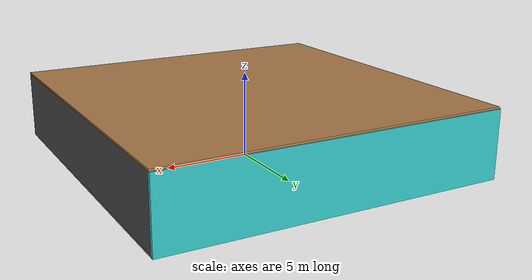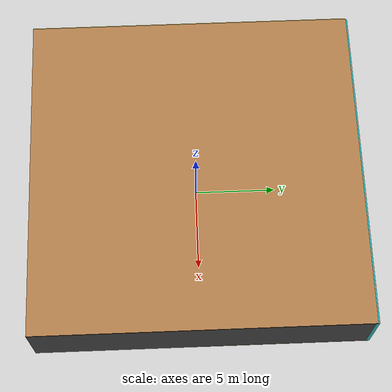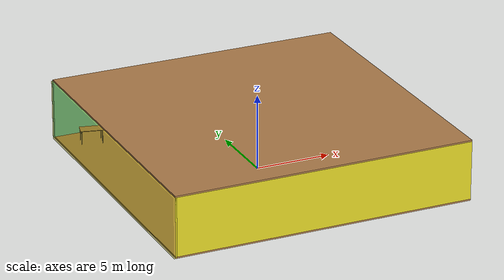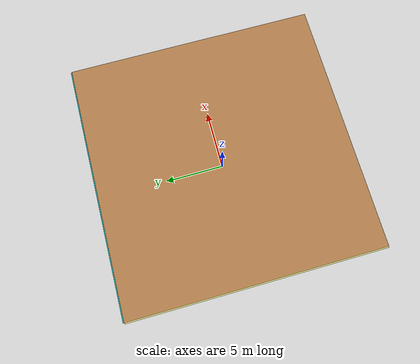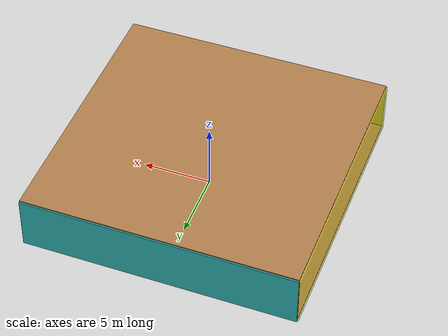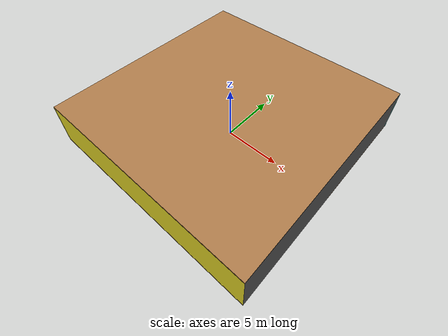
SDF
<sdf version="1.4">
 <world name="default">
  <physics type="ode">
   <max_step_size>0.001</max_step_size>
   <real_time_factor>1</real_time_factor>
   <real_time_update_rate>1000</real_time_update_rate>
   <gravity>0 0 -9.8</gravity>
  </physics>
  <scene><ambient>0.4 0.4 0.4 1</ambient><background>0.7 0.7 0.7 1</background><shadows>1</shadows></scene>
  <model name="Surrounding">
   <static>1</static>
   <link name="Ceiling">
    <collision name="Ceiling_Collision"><geometry><box><size>20 20 0.1</size></box></geometry></collision>
    <visual name="Ceiling_Visual">
     <geometry><box><size>20 20 0.1</size></box></geometry>
     <material>
      <script><uri>file://media/materials/scripts/gazebo.material</uri><name>Gazebo/Wood</name></script>
     </material>
    </visual>
    <pose>0 0 4.05 0 0 0</pose>
   </link>
   <link name="Wall_South">
    <collision name="Wall_South_Collision">
     <geometry><box><size>20 0 4</size></box></geometry>
     <pose>0 0 2 0 -0 0</pose>
    </collision>
    <visual name="Wall_South_Visual">
     <pose>0 0 2 0 -0 0</pose>
     <geometry><box><size>20 0 4</size></box></geometry>
     <material>
      <script><uri>file://media/materials/scripts/gazebo.material</uri><name>Gazebo/YellowGlow</name></script>
     </material>
    </visual>
    <velocity_decay><linear>0</linear><angular>0</angular></velocity_decay>
    <pose>0 -10 0 0 -0 0</pose>
   </link>
   <link name="Wall_East">
    <collision name="Wall_21_Collision">
     <geometry><box><size>20 0 4</size></box></geometry>
     <pose>0 0 2 0 -0 0</pose>
    </collision>
    <visual name="Wall_21_Visual">
     <pose>0 0 2 0 -0 0</pose>
     <geometry><box><size>20 0 4</size></box></geometry>
     <material>
      <script><uri>file://media/materials/scripts/gazebo.material</uri><name>Gazebo/Road</name></script>
     </material>
    </visual>
    <velocity_decay><linear>0</linear><angular>0</angular></velocity_decay>
    <pose>10 0 0 0 -0 1.5708</pose>
   </link>
   <link name="Wall_North">
    <collision name="Wall_22_Collision">
     <geometry><box><size>20 0.2 4</size></box></geometry>
     <pose>0 0 2 0 -0 0</pose>
    </collision>
    <visual name="Wall_22_Visual">
     <pose>0 0 2 0 -0 0</pose>
     <geometry><box><size>20 0.2 4</size></box></geometry>
     <material>
      <script>
       <uri>file://media/materials/scripts/gazebo.material</uri>
       <name>Gazebo/TurquoiseGlowOutline</name>
      </script>
     </material>
    </visual>
    <velocity_decay><linear>0</linear><angular>0</angular></velocity_decay>
    <pose>0 10 0 0 -0 0</pose>
   </link>
   <link name="Wall_West">
    <collision name="Wall_23_Collision">
     <geometry><box><size>20 0.2 4</size></box></geometry>
     <pose>0 0 2 0 -0 0</pose>
    </collision>
    <visual name="Wall_23_Visual">
     <pose>0 0 2 0 -0 0</pose>
     <geometry><box><size>20 0.2 4</size></box></geometry>
     <material>
      <script>
       <uri>file://media/materials/scripts/gazebo.material</uri>
       <name>Gazebo/YellowTransparent</name>
      </script>
     </material>
    </visual>
    <velocity_decay><linear>0</linear><angular>0</angular></velocity_decay>
    <pose>-10 0 0 0 0 -1.5708</pose>
   </link>
   <link name="Ground_link">
    <collision name="collision">
     <pose>0 0 .05 0 -0 0</pose>
     <geometry><box><size>20 20 0.1</size></box></geometry>
    </collision>
    <visual name="visual">
     <pose>0 0 .05 0 -0 0</pose>
     <geometry><box><size>20 20 0.1</size></box></geometry>
     <material>
      <script><uri>file://media/materials/scripts/gazebo.material</uri><name>Gazebo/Wood</name></script>
     </material>
    </visual>
   </link>
   <static>1</static>
  </model>
  <spherical_coordinates>
   <surface_model>EARTH_WGS84</surface_model>
   <latitude_deg>0</latitude_deg>
   <longitude_deg>0</longitude_deg>
   <elevation>0</elevation>
   <heading_deg>0</heading_deg>
  </spherical_coordinates>
  <light name="lightball_0" type="diffuse">
   <diffuse>0.8 0.8 0.8 1</diffuse>
   <specular>0.2 0.2 0.2 1</specular>
   <attenuation>
    <range>100</range>
    <constant>0.7</constant>
    <linear>0.01</linear>
    <quadratic>0.001</quadratic>
   </attenuation>
   <direction>-0.5 0.1 -0.9</direction>
   <pose>-9.28599675233 -3.13879680911 2.57783192315 0 0 0</pose>
  </light>
  <light name="lightball_1" type="diffuse">
   <diffuse>0.8 0.8 0.8 1</diffuse>
   <specular>0.2 0.2 0.2 1</specular>
   <attenuation>
    <range>100</range>
    <constant>0.7</constant>
    <linear>0.01</linear>
    <quadratic>0.001</quadratic>
   </attenuation>
   <direction>-0.5 0.1 -0.9</direction>
   <pose>-9.34011395746 -1.35696754439 3.64612910202 0 0 0</pose>
  </light>
  <light name="lightball_2" type="diffuse">
   <diffuse>0.8 0.8 0.8 1</diffuse>
   <specular>0.2 0.2 0.2 1</specular>
   <attenuation>
    <range>100</range>
    <constant>0.7</constant>
    <linear>0.01</linear>
    <quadratic>0.001</quadratic>
   </attenuation>
   <direction>-0.5 0.1 -0.9</direction>
   <pose>-8.27287210688 9.81659522528 0.652435590015 0 0 0</pose>
  </light>
  <light name="lightball_3" type="diffuse">
   <diffuse>0.8 0.8 0.8 1</diffuse>
   <specular>0.2 0.2 0.2 1</specular>
   <attenuation>
    <range>100</range>
    <constant>0.7</constant>
    <linear>0.01</linear>
    <quadratic>0.001</quadratic>
   </attenuation>
   <direction>-0.5 0.1 -0.9</direction>
   <pose>-4.51640176201 8.50195368489 2.62292495455 0 0 0</pose>
  </light>
  <light name="lightball_4" type="diffuse">
   <diffuse>0.8 0.8 0.8 1</diffuse>
   <specular>0.2 0.2 0.2 1</specular>
   <attenuation>
    <range>100</range>
    <constant>0.7</constant>
    <linear>0.01</linear>
    <quadratic>0.001</quadratic>
   </attenuation>
   <direction>-0.5 0.1 -0.9</direction>
   <pose>3.37877532909 0.543930543514 2.46511854354 0 0 0</pose>
  </light>
  <light name="lightball_5" type="diffuse">
   <diffuse>0.8 0.8 0.8 1</diffuse>
   <specular>0.2 0.2 0.2 1</specular>
   <attenuation>
    <range>100</range>
    <constant>0.7</constant>
    <linear>0.01</linear>
    <quadratic>0.001</quadratic>
   </attenuation>
   <direction>-0.5 0.1 -0.9</direction>
   <pose>9.26372269289 0.431410006673 1.2839909951 0 0 0</pose>
  </light>
  <light name="lightball_6" type="diffuse">
   <diffuse>0.8 0.8 0.8 1</diffuse>
   <specular>0.2 0.2 0.2 1</specular>
   <attenuation>
    <range>100</range>
    <constant>0.7</constant>
    <linear>0.01</linear>
    <quadratic>0.001</quadratic>
   </attenuation>
   <direction>-0.5 0.1 -0.9</direction>
   <pose>-5.75188399558 -6.5232004017 0.519531547889 0 0 0</pose>
  </light>
  <light name="lightball_7" type="diffuse">
   <diffuse>0.8 0.8 0.8 1</diffuse>
   <specular>0.2 0.2 0.2 1</specular>
   <attenuation>
    <range>100</range>
    <constant>0.7</constant>
    <linear>0.01</linear>
    <quadratic>0.001</quadratic>
   </attenuation>
   <direction>-0.5 0.1 -0.9</direction>
   <pose>7.15041132141 -0.249045620218 2.956928494 0 0 0</pose>
  </light>
  <light name="lightball_8" type="diffuse">
   <diffuse>0.8 0.8 0.8 1</diffuse>
   <specular>0.2 0.2 0.2 1</specular>
   <attenuation>
    <range>100</range>
    <constant>0.7</constant>
    <linear>0.01</linear>
    <quadratic>0.001</quadratic>
   </attenuation>
   <direction>-0.5 0.1 -0.9</direction>
   <pose>-7.78628587108 -8.08039956247 1.67491296745 0 0 0</pose>
  </light>
  <light name="lightball_9" type="diffuse">
   <diffuse>0.8 0.8 0.8 1</diffuse>
   <specular>0.2 0.2 0.2 1</specular>
   <attenuation>
    <range>100</range>
    <constant>0.7</constant>
    <linear>0.01</linear>
    <quadratic>0.001</quadratic>
   </attenuation>
   <direction>-0.5 0.1 -0.9</direction>
   <pose>-4.58954605503 -2.61993579172 1.6088015038 0 0 0</pose>
  </light>
  <light name="lightball_10" type="diffuse">
   <diffuse>0.8 0.8 0.8 1</diffuse>
   <specular>0.2 0.2 0.2 1</specular>
   <attenuation>
    <range>100</range>
    <constant>0.7</constant>
    <linear>0.01</linear>
    <quadratic>0.001</quadratic>
   </attenuation>
   <direction>-0.5 0.1 -0.9</direction>
   <pose>6.91387650825 3.55771155195 2.14093796058 0 0 0</pose>
  </light>
  <light name="lightball_11" type="diffuse">
   <diffuse>0.8 0.8 0.8 1</diffuse>
   <specular>0.2 0.2 0.2 1</specular>
   <attenuation>
    <range>100</range>
    <constant>0.7</constant>
    <linear>0.01</linear>
    <quadratic>0.001</quadratic>
   </attenuation>
   <direction>-0.5 0.1 -0.9</direction>
   <pose>-4.17463327145 -2.0224809619 1.57263171321 0 0 0</pose>
  </light>
  <include><uri>model://table</uri><pose>-8.09595902441 8.23551151944 0 0 0 2.8983970954</pose></include>
  <include><uri>model://table</uri><pose>1.98366627237 1.54589981483 0 0 0 1.64923895257</pose></include>
  <include><uri>model://cabinet</uri><pose>4.20863446521 -1.49881282378 0 0 0 0.523533829532</pose></include>
 </world>
</sdf>

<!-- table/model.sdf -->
<sdf version="1.5">
  <model name="table">
    <static>true</static>
    <link name="link">
      <collision name="surface">
        <pose>0 0 1.0 0 0 0</pose>
        <geometry>
          <box>
            <size>1.5 0.8 0.03</size>
          </box>
        </geometry>
        <surface>
          <friction>
            <ode>
              <mu>0.6</mu>
              <mu2>0.6</mu2>
            </ode>
          </friction>
        </surface>
      </collision>
      <visual name="visual1">
        <pose>0 0 1.0 0 0 0</pose>
        <geometry>
          <box>
            <size>1.5 0.8 0.03</size>
          </box>
        </geometry>
        <material>
          <script>
            <uri>model://media/materials/scripts/gazebo.material</uri>
            <name>Gazebo/Wood</name>
          </script>
        </material>
      </visual>
      <collision name="front_left_leg">
        <pose>0.68 0.38 0.5 0 0 0</pose>
        <geometry>
          <cylinder>
            <radius>0.02</radius>
            <length>1.0</length>
          </cylinder>
        </geometry>
      </collision>
      <visual name="front_left_leg">
        <pose>0.68 0.38 0.5 0 0 0</pose>
        <geometry>
          <cylinder>
            <radius>0.02</radius>
            <length>1.0</length>
          </cylinder>
        </geometry>
        <material>
          <script>
            <uri>model://media/materials/scripts/gazebo.material</uri>
            <name>Gazebo/Grey</name>
          </script>
        </material>
      </visual>
      <collision name="front_right_leg">
        <pose>0.68 -0.38 0.5 0 0 0</pose>
        <geometry>
          <cylinder>
            <radius>0.02</radius>
            <length>1.0</length>
          </cylinder>
        </geometry>
      </collision>
      <visual name="front_right_leg">
        <pose>0.68 -0.38 0.5 0 0 0</pose>
        <geometry>
          <cylinder>
            <radius>0.02</radius>
            <length>1.0</length>
          </cylinder>
        </geometry>
        <material>
          <script>
            <uri>model://media/materials/scripts/gazebo.material</uri>
            <name>Gazebo/Grey</name>
          </script>
        </material>
      </visual>
      <collision name="back_right_leg">
        <pose>-0.68 -0.38 0.5 0 0 0</pose>
        <geometry>
          <cylinder>
            <radius>0.02</radius>
            <length>1.0</length>
          </cylinder>
        </geometry>
      </collision>
      <visual name="back_right_leg">
        <pose>-0.68 -0.38 0.5 0 0 0</pose>
        <geometry>
          <cylinder>
            <radius>0.02</radius>
            <length>1.0</length>
          </cylinder>
        </geometry>
        <material>
          <script>
            <uri>model://media/materials/scripts/gazebo.material</uri>
            <name>Gazebo/Grey</name>
          </script>
        </material>
      </visual>
      <collision name="back_left_leg">
        <pose>-0.68 0.38 0.5 0 0 0</pose>
        <geometry>
          <cylinder>
            <radius>0.02</radius>
            <length>1.0</length>
          </cylinder>
        </geometry>
      </collision>
      <visual name="back_left_leg">
        <pose>-0.68 0.38 0.5 0 0 0</pose>
        <geometry>
          <cylinder>
            <radius>0.02</radius>
            <length>1.0</length>
          </cylinder>
        </geometry>
        <material>
          <script>
            <uri>model://media/materials/scripts/gazebo.material</uri>
            <name>Gazebo/Grey</name>
          </script>
        </material>
      </visual>
    </link>
  </model>
</sdf>

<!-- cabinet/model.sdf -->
<sdf version="1.5">
  <model name="cabinet">
    <static>true</static>
    <link name="cabinet_bottom_plate">
      <inertial>
        <pose>0 0 -1 0 0 0</pose>
        <inertia>
          <ixx>2.050000</ixx>
          <ixy>0</ixy>
          <ixz>0</ixz>
          <iyy>2.050000</iyy>
          <iyz>0</iyz>
          <izz>2.050000</izz>
        </inertia>
        <mass>25.000000</mass>
      </inertial>
      <collision name="cabinet_bottom_plate_geom">
        <pose>0 0 0.010000 0 0 0</pose>
        <geometry>
          <box>
            <size>0.450000 0.450000 0.020000</size>
          </box>
        </geometry>
      </collision>
      <visual name="cabinet_bottom_plate_geom_visual">
        <pose>0 0 0.010000 0 0 0</pose>
        <geometry>
          <box>
            <size>0.450000 0.450000 0.020000</size>
          </box>
        </geometry>
        <material>
          <script>
            <uri>model://media/materials/scripts/gazebo.material</uri>
            <name>Gazebo/Wood</name>
          </script>
        </material>
      </visual>
      <collision name="cabinet_bottom_plate_geom_cabinet_back_plate">
        <pose>0.235000 0 0.510000 0 0 0</pose>
        <geometry>
          <box>
            <size>0.020000 0.450000 1.020000</size>
          </box>
        </geometry>
      </collision>
      <visual name="cabinet_bottom_plate_geom_cabinet_back_plate_visual">
        <pose>0.235000 0 0.510000 0 0 0</pose>
        <geometry>
          <box>
            <size>0.020000 0.450000 1.020000</size>
          </box>
        </geometry>
        <material>
          <script>
            <uri>model://media/materials/scripts/gazebo.material</uri>
            <name>Gazebo/Wood</name>
          </script>
        </material>
      </visual>
      <collision name="cabinet_bottom_plate_geom_cabinet_left_plate">
        <pose>0 0.235000 0.510000 0 0 0</pose>
        <geometry>
          <box>
            <size>0.450000 0.020000 1.020000</size>
          </box>
        </geometry>
      </collision>
      <visual name="cabinet_bottom_plate_geom_cabinet_left_plate_visual">
        <pose>0 0.235000 0.510000 0 0 0</pose>
        <geometry>
          <box>
            <size>0.450000 0.020000 1.020000</size>
          </box>
        </geometry>
        <material>
          <script>
            <uri>model://media/materials/scripts/gazebo.material</uri>
            <name>Gazebo/Wood</name>
          </script>
        </material>
      </visual>
      <collision name="cabinet_bottom_plate_geom_cabinet_middle_plate">
        <pose>0 0 0.510000 0 0 0</pose>
        <geometry>
          <box>
            <size>0.450000 0.450000 0.020000</size>
          </box>
        </geometry>
      </collision>
      <visual name="cabinet_bottom_plate_geom_cabinet_middle_plate_visual">
        <pose>0 0 0.510000 0 0 0</pose>
        <geometry>
          <box>
            <size>0.450000 0.450000 0.020000</size>
          </box>
        </geometry>
        <material>
          <script>
            <uri>model://media/materials/scripts/gazebo.material</uri>
            <name>Gazebo/Wood</name>
          </script>
        </material>
      </visual>
      <collision name="cabinet_bottom_plate_geom_cabinet_right_plate">
        <pose>0 -0.235000 0.510000 0 0 0</pose>
        <geometry>
          <box>
            <size>0.450000 0.020000 1.020000</size>
          </box>
        </geometry>
      </collision>
      <visual name="cabinet_bottom_plate_geom_cabinet_right_plate_visual">
        <pose>0 -0.235000 0.510000 0 0 0</pose>
        <geometry>
          <box>
            <size>0.450000 0.020000 1.020000</size>
          </box>
        </geometry>
        <material>
          <script>
            <uri>model://media/materials/scripts/gazebo.material</uri>
            <name>Gazebo/Wood</name>
          </script>
        </material>
      </visual>
      <collision name="cabinet_bottom_plate_geom_cabinet_top_plate">
        <pose>0 0 1.010000 0 0 0</pose>
        <geometry>
          <box>
            <size>0.450000 0.450000 0.020000</size>
          </box>
        </geometry>
      </collision>
      <visual name="cabinet_bottom_plate_geom_cabinet_top_plate_visual">
        <pose>0 0 1.010000 0 0 0</pose>
        <geometry>
          <box>
            <size>0.450000 0.450000 0.020000</size>
          </box>
        </geometry>
        <material>
          <script>
            <uri>model://media/materials/scripts/gazebo.material</uri>
            <name>Gazebo/Wood</name>
          </script>
        </material>
      </visual>
    </link>
  </model>
</sdf>
